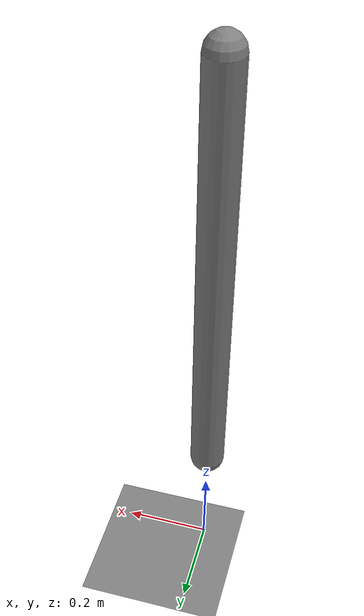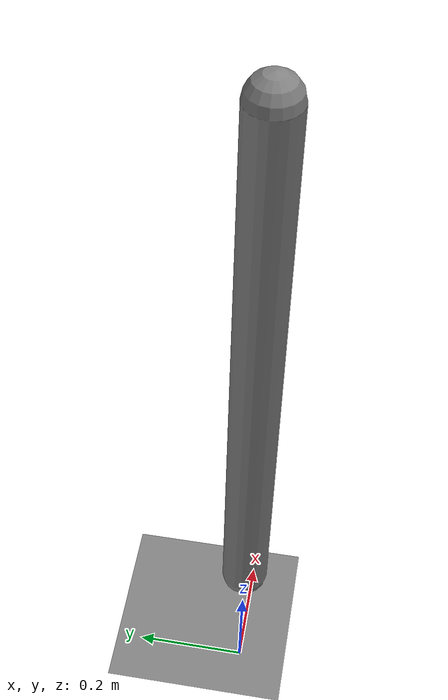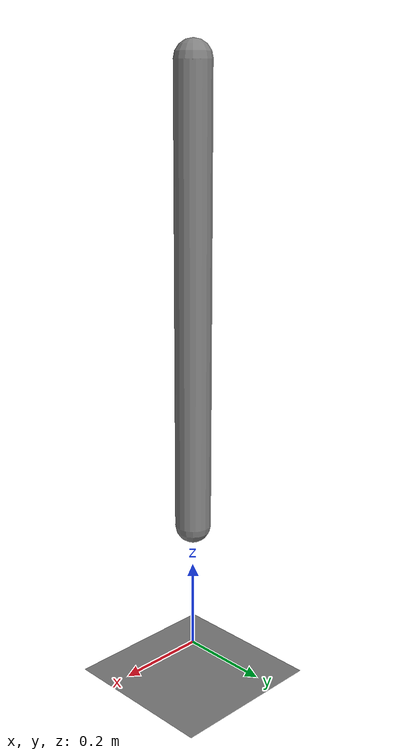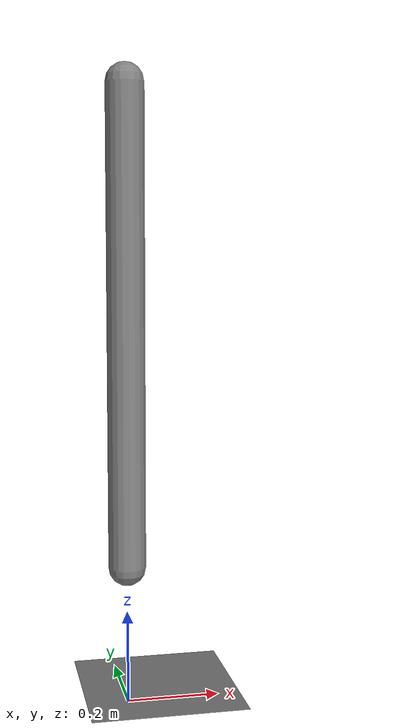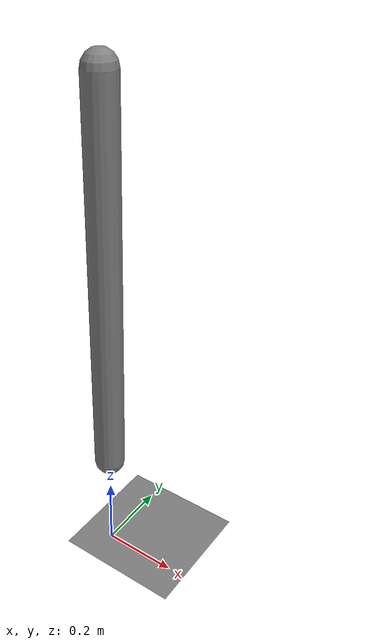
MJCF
<mujoco model="simple_pendulum">

    <option gravity="0 0 -9.81"/>

    <worldbody>

        <!-- Ground -->
        <geom type="plane" size="5 5 0.1"/>

        <!-- Pivot point -->
        <body pos="0 0 1.3">

            <!-- Rotational joint -->
            <joint name="hinge" type="hinge" axis="0 1 0"/>

            <!-- Pendulum rod. Most robotic arms use capsules because they produce stable collision behavior. -->
            <geom type="capsule"
                  fromto="0 0 0 0 0 -1"
                  size="0.04"/>

        </body>

    </worldbody>

</mujoco>
